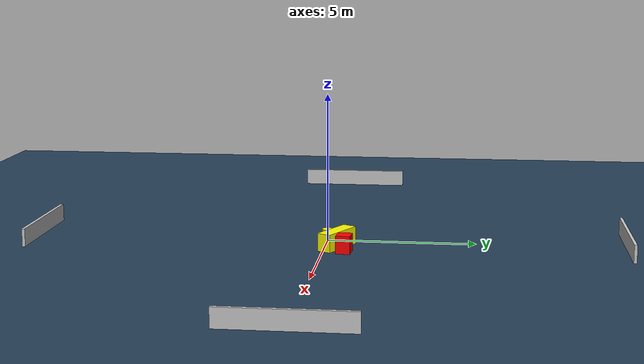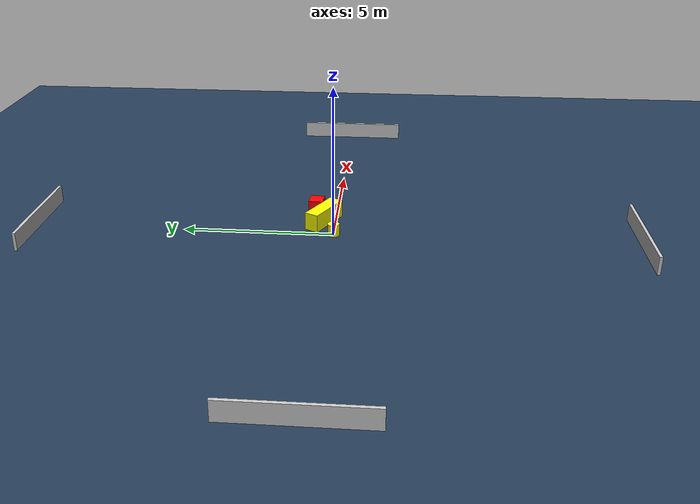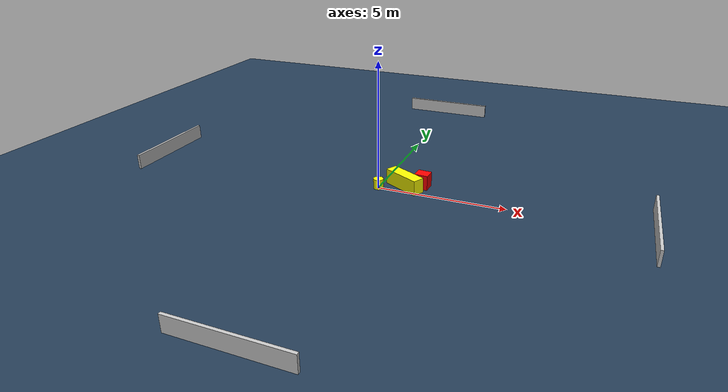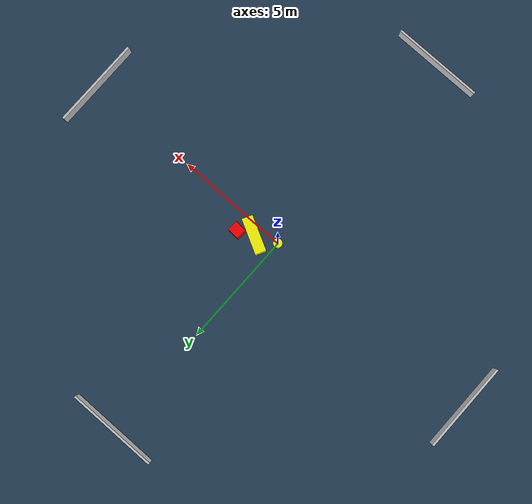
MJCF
<?xml version="1.0" ?>
<mujoco model="generated_environment">
  <option timestep="0.01" integrator="RK4" cone="elliptic"/>
  <default>
    <geom density="1"/>
  </default>
  <asset>
    <texture builtin="gradient" height="3072" name="skybox" rgb1="0.3 0.5 0.7" rgb2="0 0 0" type="skybox" width="512"/>
    <texture builtin="checker" height="300" name="groundplane" rgb1="0.2 0.3 0.4" rgb2="0.1 0.2 0.3" type="2d" width="300"/>
    <material name="groundplane" reflectance="0.2" texrepeat="5 5" texture="groundplane"/>
  </asset>
  <worldbody>
    <light dir="0 0 -1" directional="true" pos="0 0 1.5"/>
    <geom condim="3" friction="0.5 0.005 0.001" material="groundplane" name="floor" pos="0 0 0" size="0 0 0.05" type="plane"/>
    <body name="walls">
      <geom name="wall_1" condim="4" pos="-10.0 0.0 0.3" rgba="0.800000011920929 0.800000011920929 0.800000011920929 1.0" size="0.05 2.0 0.3" type="box"/>
      <geom name="wall_2" condim="4" pos="10.0 0.0 0.3" rgba="0.800000011920929 0.800000011920929 0.800000011920929 1.0" size="0.05 2.0 0.3" type="box"/>
      <geom name="wall_3" condim="4" pos="0.0 -10.0 0.3" rgba="0.800000011920929 0.800000011920929 0.800000011920929 1.0" size="2.0 0.05 0.3" type="box"/>
      <geom name="wall_4" condim="4" pos="0.0 10.0 0.3" rgba="0.800000011920929 0.800000011920929 0.800000011920929 1.0" size="2.0 0.05 0.3" type="box"/>
    </body>
    <body name="robot">
      <joint name="joint_x" type="slide" pos="0 0 0" axis="1 0 0"/>
      <joint name="joint_y" type="slide" pos="0 0 0" axis="0 1 0"/>
      <geom name="robot" type="cylinder" pos="0.0 0.0 0.2" size="0.2 0.2 0.0" mass="5.0" friction="1.0 0.005 0.0001" condim="4" rgba="1.0 1.0 0.0 1.0"/>
    </body>
    <body name="obstacle_1_movable">
      <geom name="obstacle_1_movable" condim="4" pos="0.9380786403654094 0.4022177994862863 0.3" euler="0 0 62.41358717317529" friction="0.0 0.005 0.001" rgba="1.0 1.0 0.0 1.0" size="0.2423745607826973 0.781952257550675 0.3" type="box" mass="0.1"/>
      <joint type="free"/>
    </body>
    <body name="obstacle_2_static">
      <geom name="obstacle_2_static" condim="4" pos="1.5876167819818885 0.7064284550534303 0.3" euler="0 0 175.82339840588327" friction="0.0 0.005 0.001" rgba="1.0 0.0 0.0 1.0" size="0.266996026731698 0.23885500138849347 0.3" type="box"/>
    </body>
  </worldbody>
  <actuator>
    <motor name="actuator_x" joint="joint_x" gear="1" ctrlrange="-1 1"/>
    <motor name="actuator_y" joint="joint_y" gear="1" ctrlrange="-1 1"/>
  </actuator>
</mujoco>
